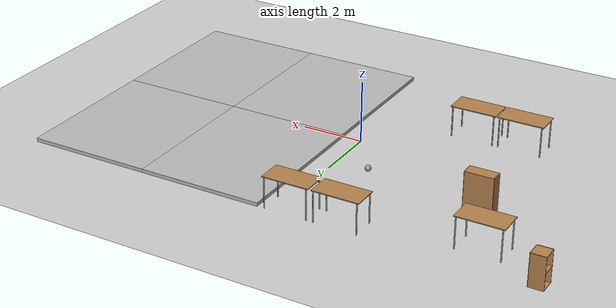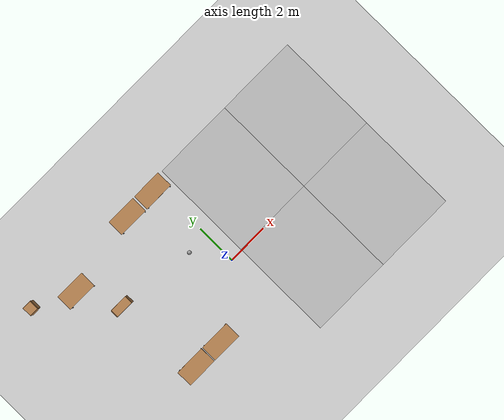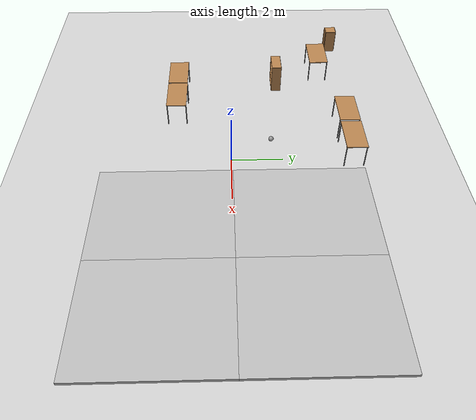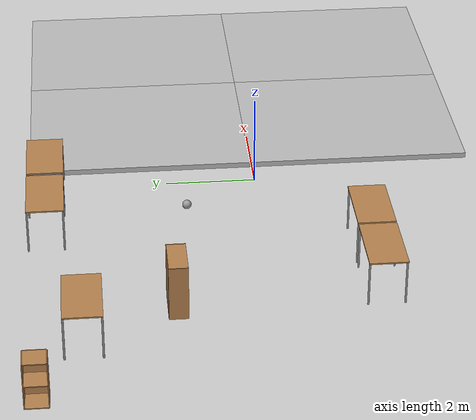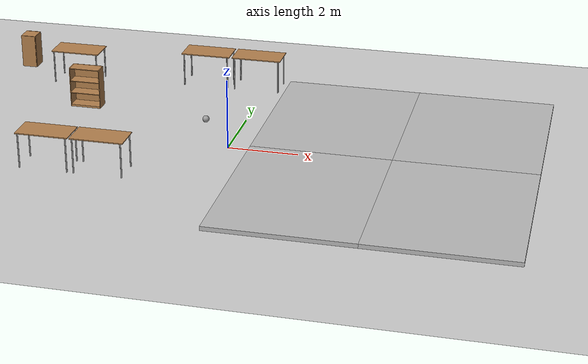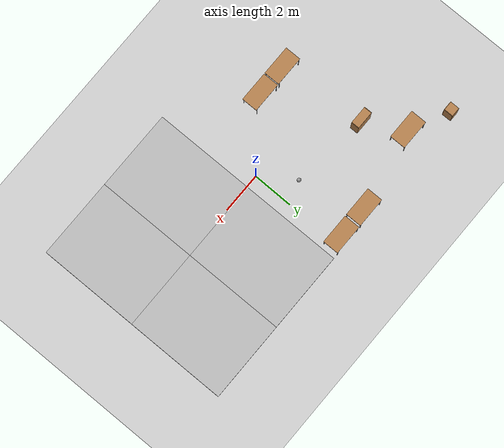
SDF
<sdf version="1.6">
 <world name="default">
  <model name="ground_plane">
   <static>1</static>
   <link name="link">
    <collision name="collision">
     <geometry><plane><normal>0 0 1</normal><size>100 100</size></plane></geometry>
     <surface>
      <contact><collide_bitmask>65535</collide_bitmask></contact>
      <friction><ode><mu>100</mu><mu2>50</mu2></ode></friction>
     </surface>
    </collision>
    <visual name="visual">
     <cast_shadows>0</cast_shadows>
     <geometry><plane><normal>0 0 1</normal><size>100 100</size></plane></geometry>
     <material>
      <script><uri>file://media/materials/scripts/gazebo.material</uri><name>Gazebo/Grey</name></script>
     </material>
    </visual>
   </link>
  </model>
  <model name="cabinet">
   <static>1</static>
   <link name="cabinet_bottom_plate">
    <inertial>
     <pose>0 0 -1 0 -0 0</pose>
     <inertia><ixx>2.05</ixx><ixy>0</ixy><ixz>0</ixz><iyy>2.05</iyy><iyz>0</iyz><izz>2.05</izz></inertia>
     <mass>25</mass>
    </inertial>
    <collision name="cabinet_bottom_plate_geom">
     <pose>0 0 0.01 0 -0 0</pose>
     <geometry><box><size>0.45 0.45 0.02</size></box></geometry>
    </collision>
    <visual name="cabinet_bottom_plate_geom_visual">
     <pose>0 0 0.01 0 -0 0</pose>
     <geometry><box><size>0.45 0.45 0.02</size></box></geometry>
     <material>
      <script><uri>file://media/materials/scripts/gazebo.material</uri><name>Gazebo/Wood</name></script>
     </material>
    </visual>
    <collision name="cabinet_bottom_plate_geom_cabinet_back_plate">
     <pose>0.235 0 0.51 0 -0 0</pose>
     <geometry><box><size>0.02 0.45 1.02</size></box></geometry>
    </collision>
    <visual name="cabinet_bottom_plate_geom_cabinet_back_plate_visual">
     <pose>0.235 0 0.51 0 -0 0</pose>
     <geometry><box><size>0.02 0.45 1.02</size></box></geometry>
     <material>
      <script><uri>file://media/materials/scripts/gazebo.material</uri><name>Gazebo/Wood</name></script>
     </material>
    </visual>
    <collision name="cabinet_bottom_plate_geom_cabinet_left_plate">
     <pose>0 0.235 0.51 0 -0 0</pose>
     <geometry><box><size>0.45 0.02 1.02</size></box></geometry>
    </collision>
    <visual name="cabinet_bottom_plate_geom_cabinet_left_plate_visual">
     <pose>0 0.235 0.51 0 -0 0</pose>
     <geometry><box><size>0.45 0.02 1.02</size></box></geometry>
     <material>
      <script><uri>file://media/materials/scripts/gazebo.material</uri><name>Gazebo/Wood</name></script>
     </material>
    </visual>
    <collision name="cabinet_bottom_plate_geom_cabinet_middle_plate">
     <pose>0 0 0.51 0 -0 0</pose>
     <geometry><box><size>0.45 0.45 0.02</size></box></geometry>
    </collision>
    <visual name="cabinet_bottom_plate_geom_cabinet_middle_plate_visual">
     <pose>0 0 0.51 0 -0 0</pose>
     <geometry><box><size>0.45 0.45 0.02</size></box></geometry>
     <material>
      <script><uri>file://media/materials/scripts/gazebo.material</uri><name>Gazebo/Wood</name></script>
     </material>
    </visual>
    <collision name="cabinet_bottom_plate_geom_cabinet_right_plate">
     <pose>0 -0.235 0.51 0 -0 0</pose>
     <geometry><box><size>0.45 0.02 1.02</size></box></geometry>
    </collision>
    <visual name="cabinet_bottom_plate_geom_cabinet_right_plate_visual">
     <pose>0 -0.235 0.51 0 -0 0</pose>
     <geometry><box><size>0.45 0.02 1.02</size></box></geometry>
     <material>
      <script><uri>file://media/materials/scripts/gazebo.material</uri><name>Gazebo/Wood</name></script>
     </material>
    </visual>
    <collision name="cabinet_bottom_plate_geom_cabinet_top_plate">
     <pose>0 0 1.01 0 -0 0</pose>
     <geometry><box><size>0.45 0.45 0.02</size></box></geometry>
    </collision>
    <visual name="cabinet_bottom_plate_geom_cabinet_top_plate_visual">
     <pose>0 0 1.01 0 -0 0</pose>
     <geometry><box><size>0.45 0.45 0.02</size></box></geometry>
     <material>
      <script><uri>file://media/materials/scripts/gazebo.material</uri><name>Gazebo/Wood</name></script>
     </material>
    </visual>
   </link>
   <pose>-7.79073 4.85276 0 0 -0 0</pose>
  </model>
  <model name="bookshelf">
   <static>1</static>
   <link name="link">
    <inertial><mass>1</mass></inertial>
    <collision name="back">
     <pose>0 0.005 0.6 0 -0 0</pose>
     <geometry><box><size>0.9 0.01 1.2</size></box></geometry>
    </collision>
    <visual name="visual1">
     <pose>0 0.005 0.6 0 -0 0</pose>
     <geometry><box><size>0.9 0.01 1.2</size></box></geometry>
     <material>
      <script><uri>file://media/materials/scripts/gazebo.material</uri><name>Gazebo/Wood</name></script>
     </material>
    </visual>
    <collision name="left_side">
     <pose>0.45 -0.195 0.6 0 -0 0</pose>
     <geometry><box><size>0.02 0.4 1.2</size></box></geometry>
    </collision>
    <visual name="visual2">
     <pose>0.45 -0.195 0.6 0 -0 0</pose>
     <geometry><box><size>0.02 0.4 1.2</size></box></geometry>
     <material>
      <script><uri>file://media/materials/scripts/gazebo.material</uri><name>Gazebo/Wood</name></script>
     </material>
    </visual>
    <collision name="right_side">
     <pose>-0.45 -0.195 0.6 0 -0 0</pose>
     <geometry><box><size>0.02 0.4 1.2</size></box></geometry>
    </collision>
    <visual name="visual3">
     <pose>-0.45 -0.195 0.6 0 -0 0</pose>
     <geometry><box><size>0.02 0.4 1.2</size></box></geometry>
     <material>
      <script><uri>file://media/materials/scripts/gazebo.material</uri><name>Gazebo/Wood</name></script>
     </material>
    </visual>
    <collision name="bottom">
     <pose>0 -0.195 0.03 0 -0 0</pose>
     <geometry><box><size>0.88 0.4 0.06</size></box></geometry>
    </collision>
    <visual name="visual4">
     <pose>0 -0.195 0.03 0 -0 0</pose>
     <geometry><box><size>0.88 0.4 0.06</size></box></geometry>
     <material>
      <script><uri>file://media/materials/scripts/gazebo.material</uri><name>Gazebo/Wood</name></script>
     </material>
    </visual>
    <collision name="top">
     <pose>0 -0.195 1.19 0 -0 0</pose>
     <geometry><box><size>0.88 0.4 0.02</size></box></geometry>
    </collision>
    <visual name="visual5">
     <pose>0 -0.195 1.19 0 -0 0</pose>
     <geometry><box><size>0.88 0.4 0.02</size></box></geometry>
     <material>
      <script><uri>file://media/materials/scripts/gazebo.material</uri><name>Gazebo/Wood</name></script>
     </material>
    </visual>
    <collision name="low_shelf">
     <pose>0 -0.195 0.43 0 -0 0</pose>
     <geometry><box><size>0.88 0.4 0.02</size></box></geometry>
    </collision>
    <visual name="visual6">
     <pose>0 -0.195 0.43 0 -0 0</pose>
     <geometry><box><size>0.88 0.4 0.02</size></box></geometry>
     <material>
      <script><uri>file://media/materials/scripts/gazebo.material</uri><name>Gazebo/Wood</name></script>
     </material>
    </visual>
    <collision name="high_shelf">
     <pose>0 -0.195 0.8 0 -0 0</pose>
     <geometry><box><size>0.88 0.4 0.02</size></box></geometry>
    </collision>
    <visual name="visual7">
     <pose>0 -0.195 0.8 0 -0 0</pose>
     <geometry><box><size>0.88 0.4 0.02</size></box></geometry>
     <material>
      <script><uri>file://media/materials/scripts/gazebo.material</uri><name>Gazebo/Wood</name></script>
     </material>
    </visual>
   </link>
   <pose>-4.88239 2.23385 0 0 -0 0</pose>
  </model>
  <model name="table">
   <static>1</static>
   <link name="link">
    <collision name="surface">
     <pose>0 0 1 0 -0 0</pose>
     <geometry><box><size>1.5 0.8 0.03</size></box></geometry>
     <surface><friction><ode><mu>0.6</mu><mu2>0.6</mu2></ode></friction></surface>
    </collision>
    <visual name="visual1">
     <pose>0 0 1 0 -0 0</pose>
     <geometry><box><size>1.5 0.8 0.03</size></box></geometry>
     <material>
      <script><uri>file://media/materials/scripts/gazebo.material</uri><name>Gazebo/Wood</name></script>
     </material>
    </visual>
    <collision name="front_left_leg">
     <pose>0.68 0.38 0.5 0 -0 0</pose>
     <geometry><cylinder><radius>0.02</radius><length>1</length></cylinder></geometry>
    </collision>
    <visual name="front_left_leg">
     <pose>0.68 0.38 0.5 0 -0 0</pose>
     <geometry><cylinder><radius>0.02</radius><length>1</length></cylinder></geometry>
     <material>
      <script><uri>file://media/materials/scripts/gazebo.material</uri><name>Gazebo/Grey</name></script>
     </material>
    </visual>
    <collision name="front_right_leg">
     <pose>0.68 -0.38 0.5 0 -0 0</pose>
     <geometry><cylinder><radius>0.02</radius><length>1</length></cylinder></geometry>
    </collision>
    <visual name="front_right_leg">
     <pose>0.68 -0.38 0.5 0 -0 0</pose>
     <geometry><cylinder><radius>0.02</radius><length>1</length></cylinder></geometry>
     <material>
      <script><uri>file://media/materials/scripts/gazebo.material</uri><name>Gazebo/Grey</name></script>
     </material>
    </visual>
    <collision name="back_right_leg">
     <pose>-0.68 -0.38 0.5 0 -0 0</pose>
     <geometry><cylinder><radius>0.02</radius><length>1</length></cylinder></geometry>
    </collision>
    <visual name="back_right_leg">
     <pose>-0.68 -0.38 0.5 0 -0 0</pose>
     <geometry><cylinder><radius>0.02</radius><length>1</length></cylinder></geometry>
     <material>
      <script><uri>file://media/materials/scripts/gazebo.material</uri><name>Gazebo/Grey</name></script>
     </material>
    </visual>
    <collision name="back_left_leg">
     <pose>-0.68 0.38 0.5 0 -0 0</pose>
     <geometry><cylinder><radius>0.02</radius><length>1</length></cylinder></geometry>
    </collision>
    <visual name="back_left_leg">
     <pose>-0.68 0.38 0.5 0 -0 0</pose>
     <geometry><cylinder><radius>0.02</radius><length>1</length></cylinder></geometry>
     <material>
      <script><uri>file://media/materials/scripts/gazebo.material</uri><name>Gazebo/Grey</name></script>
     </material>
    </visual>
   </link>
   <pose>-5.82965 3.95107 0 0 -0 0</pose>
  </model>
  <model name="table_0">
   <static>1</static>
   <link name="link">
    <collision name="surface">
     <pose>0 0 1 0 -0 0</pose>
     <geometry><box><size>1.5 0.8 0.03</size></box></geometry>
     <surface><friction><ode><mu>0.6</mu><mu2>0.6</mu2></ode></friction></surface>
    </collision>
    <visual name="visual1">
     <pose>0 0 1 0 -0 0</pose>
     <geometry><box><size>1.5 0.8 0.03</size></box></geometry>
     <material>
      <script><uri>file://media/materials/scripts/gazebo.material</uri><name>Gazebo/Wood</name></script>
     </material>
    </visual>
    <collision name="front_left_leg">
     <pose>0.68 0.38 0.5 0 -0 0</pose>
     <geometry><cylinder><radius>0.02</radius><length>1</length></cylinder></geometry>
    </collision>
    <visual name="front_left_leg">
     <pose>0.68 0.38 0.5 0 -0 0</pose>
     <geometry><cylinder><radius>0.02</radius><length>1</length></cylinder></geometry>
     <material>
      <script><uri>file://media/materials/scripts/gazebo.material</uri><name>Gazebo/Grey</name></script>
     </material>
    </visual>
    <collision name="front_right_leg">
     <pose>0.68 -0.38 0.5 0 -0 0</pose>
     <geometry><cylinder><radius>0.02</radius><length>1</length></cylinder></geometry>
    </collision>
    <visual name="front_right_leg">
     <pose>0.68 -0.38 0.5 0 -0 0</pose>
     <geometry><cylinder><radius>0.02</radius><length>1</length></cylinder></geometry>
     <material>
      <script><uri>file://media/materials/scripts/gazebo.material</uri><name>Gazebo/Grey</name></script>
     </material>
    </visual>
    <collision name="back_right_leg">
     <pose>-0.68 -0.38 0.5 0 -0 0</pose>
     <geometry><cylinder><radius>0.02</radius><length>1</length></cylinder></geometry>
    </collision>
    <visual name="back_right_leg">
     <pose>-0.68 -0.38 0.5 0 -0 0</pose>
     <geometry><cylinder><radius>0.02</radius><length>1</length></cylinder></geometry>
     <material>
      <script><uri>file://media/materials/scripts/gazebo.material</uri><name>Gazebo/Grey</name></script>
     </material>
    </visual>
    <collision name="back_left_leg">
     <pose>-0.68 0.38 0.5 0 -0 0</pose>
     <geometry><cylinder><radius>0.02</radius><length>1</length></cylinder></geometry>
    </collision>
    <visual name="back_left_leg">
     <pose>-0.68 0.38 0.5 0 -0 0</pose>
     <geometry><cylinder><radius>0.02</radius><length>1</length></cylinder></geometry>
     <material>
      <script><uri>file://media/materials/scripts/gazebo.material</uri><name>Gazebo/Grey</name></script>
     </material>
    </visual>
   </link>
   <pose>-0.288993 4.6714 0 0 -0 0</pose>
  </model>
  <model name="table_1">
   <static>1</static>
   <link name="link">
    <collision name="surface">
     <pose>0 0 1 0 -0 0</pose>
     <geometry><box><size>1.5 0.8 0.03</size></box></geometry>
     <surface><friction><ode><mu>0.6</mu><mu2>0.6</mu2></ode></friction></surface>
    </collision>
    <visual name="visual1">
     <pose>0 0 1 0 -0 0</pose>
     <geometry><box><size>1.5 0.8 0.03</size></box></geometry>
     <material>
      <script><uri>file://media/materials/scripts/gazebo.material</uri><name>Gazebo/Wood</name></script>
     </material>
    </visual>
    <collision name="front_left_leg">
     <pose>0.68 0.38 0.5 0 -0 0</pose>
     <geometry><cylinder><radius>0.02</radius><length>1</length></cylinder></geometry>
    </collision>
    <visual name="front_left_leg">
     <pose>0.68 0.38 0.5 0 -0 0</pose>
     <geometry><cylinder><radius>0.02</radius><length>1</length></cylinder></geometry>
     <material>
      <script><uri>file://media/materials/scripts/gazebo.material</uri><name>Gazebo/Grey</name></script>
     </material>
    </visual>
    <collision name="front_right_leg">
     <pose>0.68 -0.38 0.5 0 -0 0</pose>
     <geometry><cylinder><radius>0.02</radius><length>1</length></cylinder></geometry>
    </collision>
    <visual name="front_right_leg">
     <pose>0.68 -0.38 0.5 0 -0 0</pose>
     <geometry><cylinder><radius>0.02</radius><length>1</length></cylinder></geometry>
     <material>
      <script><uri>file://media/materials/scripts/gazebo.material</uri><name>Gazebo/Grey</name></script>
     </material>
    </visual>
    <collision name="back_right_leg">
     <pose>-0.68 -0.38 0.5 0 -0 0</pose>
     <geometry><cylinder><radius>0.02</radius><length>1</length></cylinder></geometry>
    </collision>
    <visual name="back_right_leg">
     <pose>-0.68 -0.38 0.5 0 -0 0</pose>
     <geometry><cylinder><radius>0.02</radius><length>1</length></cylinder></geometry>
     <material>
      <script><uri>file://media/materials/scripts/gazebo.material</uri><name>Gazebo/Grey</name></script>
     </material>
    </visual>
    <collision name="back_left_leg">
     <pose>-0.68 0.38 0.5 0 -0 0</pose>
     <geometry><cylinder><radius>0.02</radius><length>1</length></cylinder></geometry>
    </collision>
    <visual name="back_left_leg">
     <pose>-0.68 0.38 0.5 0 -0 0</pose>
     <geometry><cylinder><radius>0.02</radius><length>1</length></cylinder></geometry>
     <material>
      <script><uri>file://media/materials/scripts/gazebo.material</uri><name>Gazebo/Grey</name></script>
     </material>
    </visual>
   </link>
   <pose>-1.87609 4.67031 0 0 -0 0</pose>
  </model>
  <model name="table_2">
   <static>1</static>
   <link name="link">
    <collision name="surface">
     <pose>0 0 1 0 -0 0</pose>
     <geometry><box><size>1.5 0.8 0.03</size></box></geometry>
     <surface><friction><ode><mu>0.6</mu><mu2>0.6</mu2></ode></friction></surface>
    </collision>
    <visual name="visual1">
     <pose>0 0 1 0 -0 0</pose>
     <geometry><box><size>1.5 0.8 0.03</size></box></geometry>
     <material>
      <script><uri>file://media/materials/scripts/gazebo.material</uri><name>Gazebo/Wood</name></script>
     </material>
    </visual>
    <collision name="front_left_leg">
     <pose>0.68 0.38 0.5 0 -0 0</pose>
     <geometry><cylinder><radius>0.02</radius><length>1</length></cylinder></geometry>
    </collision>
    <visual name="front_left_leg">
     <pose>0.68 0.38 0.5 0 -0 0</pose>
     <geometry><cylinder><radius>0.02</radius><length>1</length></cylinder></geometry>
     <material>
      <script><uri>file://media/materials/scripts/gazebo.material</uri><name>Gazebo/Grey</name></script>
     </material>
    </visual>
    <collision name="front_right_leg">
     <pose>0.68 -0.38 0.5 0 -0 0</pose>
     <geometry><cylinder><radius>0.02</radius><length>1</length></cylinder></geometry>
    </collision>
    <visual name="front_right_leg">
     <pose>0.68 -0.38 0.5 0 -0 0</pose>
     <geometry><cylinder><radius>0.02</radius><length>1</length></cylinder></geometry>
     <material>
      <script><uri>file://media/materials/scripts/gazebo.material</uri><name>Gazebo/Grey</name></script>
     </material>
    </visual>
    <collision name="back_right_leg">
     <pose>-0.68 -0.38 0.5 0 -0 0</pose>
     <geometry><cylinder><radius>0.02</radius><length>1</length></cylinder></geometry>
    </collision>
    <visual name="back_right_leg">
     <pose>-0.68 -0.38 0.5 0 -0 0</pose>
     <geometry><cylinder><radius>0.02</radius><length>1</length></cylinder></geometry>
     <material>
      <script><uri>file://media/materials/scripts/gazebo.material</uri><name>Gazebo/Grey</name></script>
     </material>
    </visual>
    <collision name="back_left_leg">
     <pose>-0.68 0.38 0.5 0 -0 0</pose>
     <geometry><cylinder><radius>0.02</radius><length>1</length></cylinder></geometry>
    </collision>
    <visual name="back_left_leg">
     <pose>-0.68 0.38 0.5 0 -0 0</pose>
     <geometry><cylinder><radius>0.02</radius><length>1</length></cylinder></geometry>
     <material>
      <script><uri>file://media/materials/scripts/gazebo.material</uri><name>Gazebo/Grey</name></script>
     </material>
    </visual>
   </link>
   <pose>-4.46585 -2.17895 0 0 -0 0</pose>
  </model>
  <model name="table_3">
   <static>1</static>
   <link name="link">
    <collision name="surface">
     <pose>0 0 1 0 -0 0</pose>
     <geometry><box><size>1.5 0.8 0.03</size></box></geometry>
     <surface><friction><ode><mu>0.6</mu><mu2>0.6</mu2></ode></friction></surface>
    </collision>
    <visual name="visual1">
     <pose>0 0 1 0 -0 0</pose>
     <geometry><box><size>1.5 0.8 0.03</size></box></geometry>
     <material>
      <script><uri>file://media/materials/scripts/gazebo.material</uri><name>Gazebo/Wood</name></script>
     </material>
    </visual>
    <collision name="front_left_leg">
     <pose>0.68 0.38 0.5 0 -0 0</pose>
     <geometry><cylinder><radius>0.02</radius><length>1</length></cylinder></geometry>
    </collision>
    <visual name="front_left_leg">
     <pose>0.68 0.38 0.5 0 -0 0</pose>
     <geometry><cylinder><radius>0.02</radius><length>1</length></cylinder></geometry>
     <material>
      <script><uri>file://media/materials/scripts/gazebo.material</uri><name>Gazebo/Grey</name></script>
     </material>
    </visual>
    <collision name="front_right_leg">
     <pose>0.68 -0.38 0.5 0 -0 0</pose>
     <geometry><cylinder><radius>0.02</radius><length>1</length></cylinder></geometry>
    </collision>
    <visual name="front_right_leg">
     <pose>0.68 -0.38 0.5 0 -0 0</pose>
     <geometry><cylinder><radius>0.02</radius><length>1</length></cylinder></geometry>
     <material>
      <script><uri>file://media/materials/scripts/gazebo.material</uri><name>Gazebo/Grey</name></script>
     </material>
    </visual>
    <collision name="back_right_leg">
     <pose>-0.68 -0.38 0.5 0 -0 0</pose>
     <geometry><cylinder><radius>0.02</radius><length>1</length></cylinder></geometry>
    </collision>
    <visual name="back_right_leg">
     <pose>-0.68 -0.38 0.5 0 -0 0</pose>
     <geometry><cylinder><radius>0.02</radius><length>1</length></cylinder></geometry>
     <material>
      <script><uri>file://media/materials/scripts/gazebo.material</uri><name>Gazebo/Grey</name></script>
     </material>
    </visual>
    <collision name="back_left_leg">
     <pose>-0.68 0.38 0.5 0 -0 0</pose>
     <geometry><cylinder><radius>0.02</radius><length>1</length></cylinder></geometry>
    </collision>
    <visual name="back_left_leg">
     <pose>-0.68 0.38 0.5 0 -0 0</pose>
     <geometry><cylinder><radius>0.02</radius><length>1</length></cylinder></geometry>
     <material>
      <script><uri>file://media/materials/scripts/gazebo.material</uri><name>Gazebo/Grey</name></script>
     </material>
    </visual>
   </link>
   <pose>-2.91567 -2.17764 0 0 -0 0</pose>
  </model>
  <model name="my_ball">
   <link name="link_0">
    <inertial>
     <mass>1</mass>
     <inertia><ixx>0.1</ixx><ixy>0</ixy><ixz>0</ixz><iyy>0.1</iyy><iyz>0</iyz><izz>0.1</izz></inertia>
    </inertial>
    <visual name="visual">
     <geometry><sphere><radius>0.1</radius></sphere></geometry>
     <material>
      <lighting>1</lighting>
      <script><uri>file://media/materials/scripts/gazebo.material</uri><name>Gazebo/Grey</name></script>
      <ambient>1 1 1 1</ambient>
      <diffuse>1 1 1 1</diffuse>
      <specular>1 1 1 1</specular>
      <emissive>1 1 1 1</emissive>
      <shader type="vertex"><normal_map>__default__</normal_map></shader>
     </material>
    </visual>
    <collision name="collision">
     <geometry><sphere><radius>0.1</radius></sphere></geometry>
     <surface>
      <friction>
       <ode><mu>1</mu><mu2>1</mu2><fdir1>0 0 0</fdir1><slip1>0</slip1><slip2>0</slip2></ode>
       <torsional>
        <coefficient>1</coefficient>
        <patch_radius>0</patch_radius>
        <surface_radius>0</surface_radius>
        <use_patch_radius>1</use_patch_radius>
        <ode><slip>0</slip></ode>
       </torsional>
      </friction>
      <bounce><restitution_coefficient>0</restitution_coefficient><threshold>1e+06</threshold></bounce>
      <contact>
       <collide_without_contact>0</collide_without_contact>
       <collide_without_contact_bitmask>1</collide_without_contact_bitmask>
       <collide_bitmask>1</collide_bitmask>
       <ode>
        <soft_cfm>0</soft_cfm>
        <soft_erp>0.2</soft_erp>
        <kp>1e+13</kp>
        <kd>1</kd>
        <max_vel>0.01</max_vel>
        <min_depth>0</min_depth>
       </ode>
       <bullet>
        <split_impulse>1</split_impulse>
        <split_impulse_penetration_threshold>-0.01</split_impulse_penetration_threshold>
        <soft_cfm>0</soft_cfm>
        <soft_erp>0.2</soft_erp>
        <kp>1e+13</kp>
        <kd>1</kd>
       </bullet>
      </contact>
     </surface>
    </collision>
   </link>
   <static>0</static>
   <pose>-1.09927 1.60374 0.1 0 -0 0</pose>
  </model>
  <model name="mud_box">
   <static>1</static>
   <link name="link">
    <collision name="collision"><geometry><box><size>8 10 0.2</size></box></geometry></collision>
    <visual name="visual_1">
     <pose>-2 2.5 0 0 -0 0</pose>
     <cast_shadows>0</cast_shadows>
     <geometry><box><size>4 5 0.2</size></box></geometry>
     <material>
      <script>
       <uri>model://mud_box/materials/scripts</uri>
       <uri>model://mud_box/materials/textures</uri>
       <name>vrc/mud</name>
      </script>
     </material>
    </visual>
    <visual name="visual_2">
     <pose>2 2.5 0 0 -0 0</pose>
     <cast_shadows>0</cast_shadows>
     <geometry><box><size>4 5 0.2</size></box></geometry>
     <material>
      <script>
       <uri>model://mud_box/materials/scripts</uri>
       <uri>model://mud_box/materials/textures</uri>
       <name>vrc/mud</name>
      </script>
     </material>
    </visual>
    <visual name="visual_3">
     <pose>2 -2.5 0 0 -0 0</pose>
     <cast_shadows>0</cast_shadows>
     <geometry><box><size>4 5 0.2</size></box></geometry>
     <material>
      <script>
       <uri>model://mud_box/materials/scripts</uri>
       <uri>model://mud_box/materials/textures</uri>
       <name>vrc/mud</name>
      </script>
     </material>
    </visual>
    <visual name="visual_4">
     <pose>-2 -2.5 0 0 -0 0</pose>
     <cast_shadows>0</cast_shadows>
     <geometry><box><size>4 5 0.2</size></box></geometry>
     <material>
      <script>
       <uri>model://mud_box/materials/scripts</uri>
       <uri>model://mud_box/materials/textures</uri>
       <name>vrc/mud</name>
      </script>
     </material>
    </visual>
   </link>
   <pose>4.62488 0.051048 0 0 -0 0</pose>
  </model>
 </world>
</sdf>
